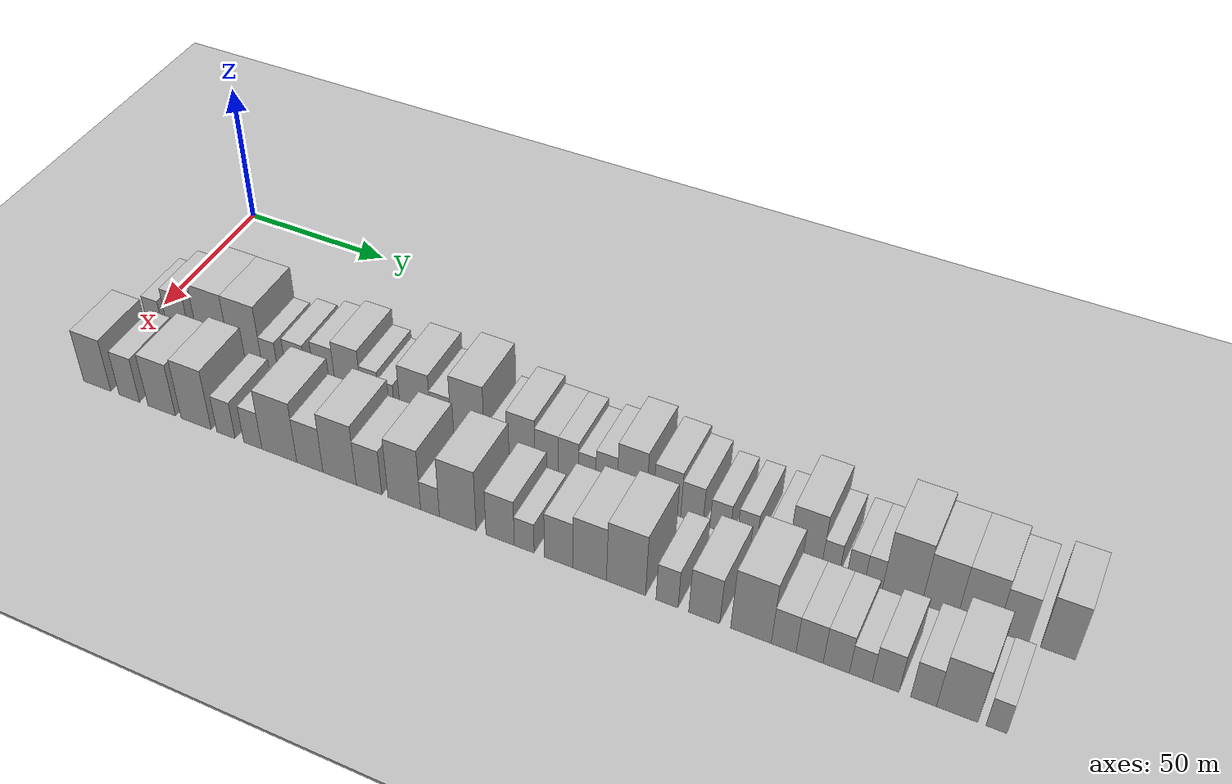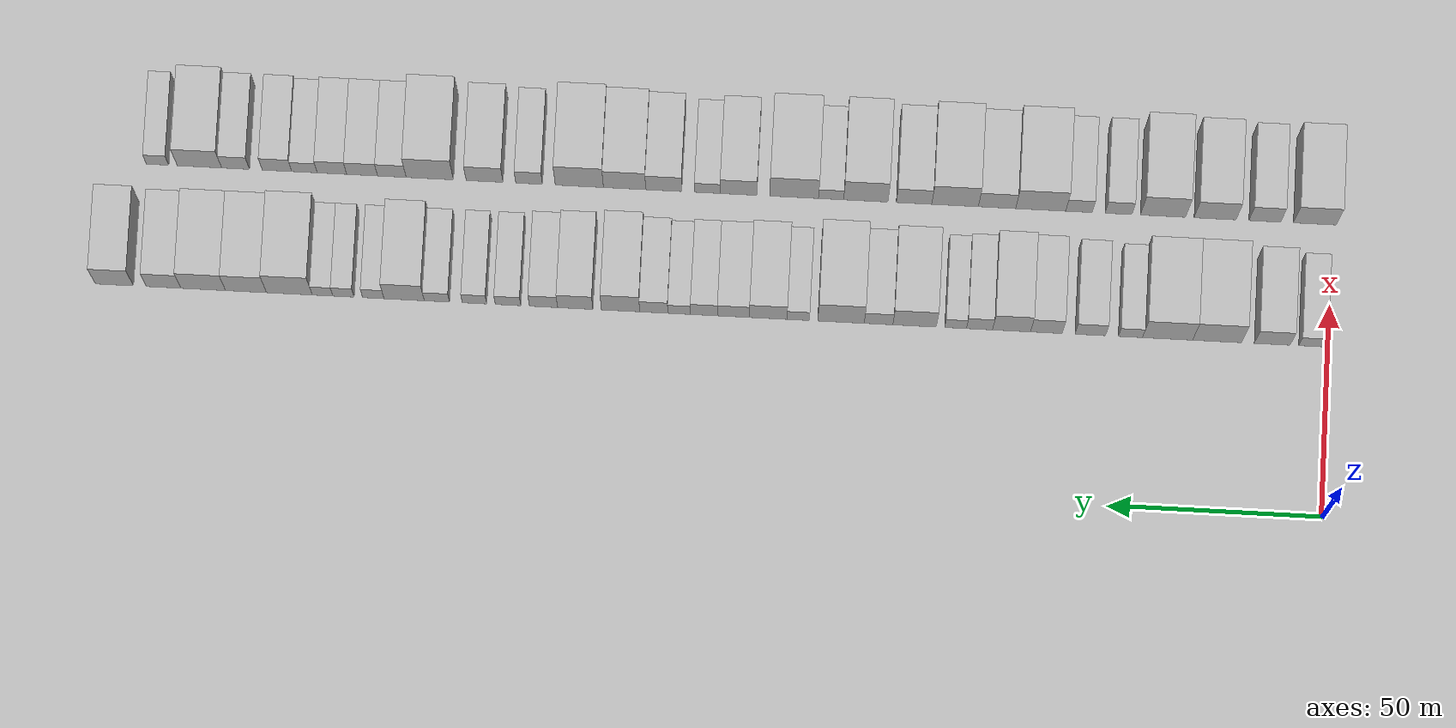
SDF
<sdf version="1.6">
 <world name="default">
  <include><name>ground_plane_1</name><uri>model://HANNAS_ground_plane</uri></include>
  <include>
   <name>ground_plane_2</name>
   <uri>model://HANNAS_ground_plane</uri>
   <pose>100 0 0  0 0 0</pose>
  </include>
  <model name="building_33">
   <static>1</static>
   <pose>50.0000 3.9265 0 0.000000 0.000000 0.000000</pose>
   <link name="link">
    <pose>0 0 6.00 0 0 0</pose>
    <collision name="collision"><geometry><box><size>20.0000 5.9898 12.0000</size></box></geometry></collision>
    <visual name="visual">
     <cast_shadows>0</cast_shadows>
     <geometry><box><size>20.0000 5.9898 12.0000</size></box></geometry>
     <material>
      <script>
       <uri>model://HANNAS_wall/materials/scripts</uri>
       <uri>model://HANNAS_wall/materials/textures</uri>
       <name>vrc/HANNAS_wall</name>
      </script>
     </material>
    </visual>
   </link>
  </model>
  <model name="building_34">
   <static>1</static>
   <pose>50.0000 13.1047 0 0.000000 0.000000 0.000000</pose>
   <link name="link">
    <pose>0 0 9.00 0 0 0</pose>
    <collision name="collision"><geometry><box><size>20.0000 8.3667 18.0000</size></box></geometry></collision>
    <visual name="visual">
     <cast_shadows>0</cast_shadows>
     <geometry><box><size>20.0000 8.3667 18.0000</size></box></geometry>
     <material>
      <script>
       <uri>model://HANNAS_wall/materials/scripts</uri>
       <uri>model://HANNAS_wall/materials/textures</uri>
       <name>vrc/HANNAS_wall</name>
      </script>
     </material>
    </visual>
   </link>
  </model>
  <model name="building_35">
   <static>1</static>
   <pose>50.0000 25.9832 0 0.000000 0.000000 0.000000</pose>
   <link name="link">
    <pose>0 0 12.00 0 0 0</pose>
    <collision name="collision"><geometry><box><size>20.0000 11.3902 24.0000</size></box></geometry></collision>
    <visual name="visual">
     <cast_shadows>0</cast_shadows>
     <geometry><box><size>20.0000 11.3902 24.0000</size></box></geometry>
     <material>
      <script>
       <uri>model://HANNAS_wall/materials/scripts</uri>
       <uri>model://HANNAS_wall/materials/textures</uri>
       <name>vrc/HANNAS_wall</name>
      </script>
     </material>
    </visual>
   </link>
  </model>
  <model name="building_36">
   <static>1</static>
   <pose>50.0000 37.5372 0 0.000000 0.000000 0.000000</pose>
   <link name="link">
    <pose>0 0 12.00 0 0 0</pose>
    <collision name="collision"><geometry><box><size>20.0000 11.7177 24.0000</size></box></geometry></collision>
    <visual name="visual">
     <cast_shadows>0</cast_shadows>
     <geometry><box><size>20.0000 11.7177 24.0000</size></box></geometry>
     <material>
      <script>
       <uri>model://HANNAS_wall/materials/scripts</uri>
       <uri>model://HANNAS_wall/materials/textures</uri>
       <name>vrc/HANNAS_wall</name>
      </script>
     </material>
    </visual>
   </link>
  </model>
  <model name="building_37">
   <static>1</static>
   <pose>50.0000 46.2099 0 0.000000 0.000000 0.000000</pose>
   <link name="link">
    <pose>0 0 6.00 0 0 0</pose>
    <collision name="collision"><geometry><box><size>20.0000 5.6278 12.0000</size></box></geometry></collision>
    <visual name="visual">
     <cast_shadows>0</cast_shadows>
     <geometry><box><size>20.0000 5.6278 12.0000</size></box></geometry>
     <material>
      <script>
       <uri>model://HANNAS_wall/materials/scripts</uri>
       <uri>model://HANNAS_wall/materials/textures</uri>
       <name>vrc/HANNAS_wall</name>
      </script>
     </material>
    </visual>
   </link>
  </model>
  <model name="building_38">
   <static>1</static>
   <pose>50.0000 55.5786 0 0.000000 0.000000 0.000000</pose>
   <link name="link">
    <pose>0 0 7.50 0 0 0</pose>
    <collision name="collision"><geometry><box><size>20.0000 7.1096 15.0000</size></box></geometry></collision>
    <visual name="visual">
     <cast_shadows>0</cast_shadows>
     <geometry><box><size>20.0000 7.1096 15.0000</size></box></geometry>
     <material>
      <script>
       <uri>model://HANNAS_wall/materials/scripts</uri>
       <uri>model://HANNAS_wall/materials/textures</uri>
       <name>vrc/HANNAS_wall</name>
      </script>
     </material>
    </visual>
   </link>
  </model>
  <model name="building_39">
   <static>1</static>
   <pose>50.0000 65.8306 0 0.000000 0.000000 0.000000</pose>
   <link name="link">
    <pose>0 0 9.00 0 0 0</pose>
    <collision name="collision"><geometry><box><size>20.0000 7.3943 18.0000</size></box></geometry></collision>
    <visual name="visual">
     <cast_shadows>0</cast_shadows>
     <geometry><box><size>20.0000 7.3943 18.0000</size></box></geometry>
     <material>
      <script>
       <uri>model://HANNAS_wall/materials/scripts</uri>
       <uri>model://HANNAS_wall/materials/textures</uri>
       <name>vrc/HANNAS_wall</name>
      </script>
     </material>
    </visual>
   </link>
  </model>
  <model name="building_40">
   <static>1</static>
   <pose>50.0000 73.9746 0 0.000000 0.000000 0.000000</pose>
   <link name="link">
    <pose>0 0 10.50 0 0 0</pose>
    <collision name="collision"><geometry><box><size>20.0000 8.8938 21.0000</size></box></geometry></collision>
    <visual name="visual">
     <cast_shadows>0</cast_shadows>
     <geometry><box><size>20.0000 8.8938 21.0000</size></box></geometry>
     <material>
      <script>
       <uri>model://HANNAS_wall/materials/scripts</uri>
       <uri>model://HANNAS_wall/materials/textures</uri>
       <name>vrc/HANNAS_wall</name>
      </script>
     </material>
    </visual>
   </link>
  </model>
  <model name="building_41">
   <static>1</static>
   <pose>50.0000 81.4546 0 0.000000 0.000000 0.000000</pose>
   <link name="link">
    <pose>0 0 7.50 0 0 0</pose>
    <collision name="collision"><geometry><box><size>20.0000 6.0662 15.0000</size></box></geometry></collision>
    <visual name="visual">
     <cast_shadows>0</cast_shadows>
     <geometry><box><size>20.0000 6.0662 15.0000</size></box></geometry>
     <material>
      <script>
       <uri>model://HANNAS_wall/materials/scripts</uri>
       <uri>model://HANNAS_wall/materials/textures</uri>
       <name>vrc/HANNAS_wall</name>
      </script>
     </material>
    </visual>
   </link>
  </model>
  <model name="building_42">
   <static>1</static>
   <pose>50.0000 87.0253 0 0.000000 0.000000 0.000000</pose>
   <link name="link">
    <pose>0 0 6.00 0 0 0</pose>
    <collision name="collision"><geometry><box><size>20.0000 5.0752 12.0000</size></box></geometry></collision>
    <visual name="visual">
     <cast_shadows>0</cast_shadows>
     <geometry><box><size>20.0000 5.0752 12.0000</size></box></geometry>
     <material>
      <script>
       <uri>model://HANNAS_wall/materials/scripts</uri>
       <uri>model://HANNAS_wall/materials/textures</uri>
       <name>vrc/HANNAS_wall</name>
      </script>
     </material>
    </visual>
   </link>
  </model>
  <model name="building_43">
   <static>1</static>
   <pose>50.0000 96.6323 0 0.000000 0.000000 0.000000</pose>
   <link name="link">
    <pose>0 0 10.50 0 0 0</pose>
    <collision name="collision"><geometry><box><size>20.0000 10.1386 21.0000</size></box></geometry></collision>
    <visual name="visual">
     <cast_shadows>0</cast_shadows>
     <geometry><box><size>20.0000 10.1386 21.0000</size></box></geometry>
     <material>
      <script>
       <uri>model://HANNAS_wall/materials/scripts</uri>
       <uri>model://HANNAS_wall/materials/textures</uri>
       <name>vrc/HANNAS_wall</name>
      </script>
     </material>
    </visual>
   </link>
  </model>
  <model name="building_44">
   <static>1</static>
   <pose>50.0000 105.0528 0 0.000000 0.000000 0.000000</pose>
   <link name="link">
    <pose>0 0 7.50 0 0 0</pose>
    <collision name="collision"><geometry><box><size>20.0000 6.7025 15.0000</size></box></geometry></collision>
    <visual name="visual">
     <cast_shadows>0</cast_shadows>
     <geometry><box><size>20.0000 6.7025 15.0000</size></box></geometry>
     <material>
      <script>
       <uri>model://HANNAS_wall/materials/scripts</uri>
       <uri>model://HANNAS_wall/materials/textures</uri>
       <name>vrc/HANNAS_wall</name>
      </script>
     </material>
    </visual>
   </link>
  </model>
  <model name="building_45">
   <static>1</static>
   <pose>50.0000 113.8188 0 0.000000 0.000000 0.000000</pose>
   <link name="link">
    <pose>0 0 12.00 0 0 0</pose>
    <collision name="collision"><geometry><box><size>20.0000 10.8294 24.0000</size></box></geometry></collision>
    <visual name="visual">
     <cast_shadows>0</cast_shadows>
     <geometry><box><size>20.0000 10.8294 24.0000</size></box></geometry>
     <material>
      <script>
       <uri>model://HANNAS_wall/materials/scripts</uri>
       <uri>model://HANNAS_wall/materials/textures</uri>
       <name>vrc/HANNAS_wall</name>
      </script>
     </material>
    </visual>
   </link>
  </model>
  <model name="building_46">
   <static>1</static>
   <pose>50.0000 123.8495 0 0.000000 0.000000 0.000000</pose>
   <link name="link">
    <pose>0 0 6.00 0 0 0</pose>
    <collision name="collision"><geometry><box><size>20.0000 5.2320 12.0000</size></box></geometry></collision>
    <visual name="visual">
     <cast_shadows>0</cast_shadows>
     <geometry><box><size>20.0000 5.2320 12.0000</size></box></geometry>
     <material>
      <script>
       <uri>model://HANNAS_wall/materials/scripts</uri>
       <uri>model://HANNAS_wall/materials/textures</uri>
       <name>vrc/HANNAS_wall</name>
      </script>
     </material>
    </visual>
   </link>
  </model>
  <model name="building_47">
   <static>1</static>
   <pose>50.0000 130.8574 0 0.000000 0.000000 0.000000</pose>
   <link name="link">
    <pose>0 0 9.00 0 0 0</pose>
    <collision name="collision"><geometry><box><size>20.0000 8.7837 18.0000</size></box></geometry></collision>
    <visual name="visual">
     <cast_shadows>0</cast_shadows>
     <geometry><box><size>20.0000 8.7837 18.0000</size></box></geometry>
     <material>
      <script>
       <uri>model://HANNAS_wall/materials/scripts</uri>
       <uri>model://HANNAS_wall/materials/textures</uri>
       <name>vrc/HANNAS_wall</name>
      </script>
     </material>
    </visual>
   </link>
  </model>
  <model name="building_48">
   <static>1</static>
   <pose>50.0000 138.9874 0 0.000000 0.000000 0.000000</pose>
   <link name="link">
    <pose>0 0 7.50 0 0 0</pose>
    <collision name="collision"><geometry><box><size>20.0000 7.4764 15.0000</size></box></geometry></collision>
    <visual name="visual">
     <cast_shadows>0</cast_shadows>
     <geometry><box><size>20.0000 7.4764 15.0000</size></box></geometry>
     <material>
      <script>
       <uri>model://HANNAS_wall/materials/scripts</uri>
       <uri>model://HANNAS_wall/materials/textures</uri>
       <name>vrc/HANNAS_wall</name>
      </script>
     </material>
    </visual>
   </link>
  </model>
  <model name="building_49">
   <static>1</static>
   <pose>50.0000 145.8648 0 0.000000 0.000000 0.000000</pose>
   <link name="link">
    <pose>0 0 7.50 0 0 0</pose>
    <collision name="collision"><geometry><box><size>20.0000 6.2784 15.0000</size></box></geometry></collision>
    <visual name="visual">
     <cast_shadows>0</cast_shadows>
     <geometry><box><size>20.0000 6.2784 15.0000</size></box></geometry>
     <material>
      <script>
       <uri>model://HANNAS_wall/materials/scripts</uri>
       <uri>model://HANNAS_wall/materials/textures</uri>
       <name>vrc/HANNAS_wall</name>
      </script>
     </material>
    </visual>
   </link>
  </model>
  <model name="building_50">
   <static>1</static>
   <pose>50.0000 151.6517 0 0.000000 0.000000 0.000000</pose>
   <link name="link">
    <pose>0 0 6.00 0 0 0</pose>
    <collision name="collision"><geometry><box><size>20.0000 5.2955 12.0000</size></box></geometry></collision>
    <visual name="visual">
     <cast_shadows>0</cast_shadows>
     <geometry><box><size>20.0000 5.2955 12.0000</size></box></geometry>
     <material>
      <script>
       <uri>model://HANNAS_wall/materials/scripts</uri>
       <uri>model://HANNAS_wall/materials/textures</uri>
       <name>vrc/HANNAS_wall</name>
      </script>
     </material>
    </visual>
   </link>
  </model>
  <model name="building_51">
   <static>1</static>
   <pose>50.0000 157.5836 0 0.000000 0.000000 0.000000</pose>
   <link name="link">
    <pose>0 0 7.50 0 0 0</pose>
    <collision name="collision"><geometry><box><size>20.0000 6.5682 15.0000</size></box></geometry></collision>
    <visual name="visual">
     <cast_shadows>0</cast_shadows>
     <geometry><box><size>20.0000 6.5682 15.0000</size></box></geometry>
     <material>
      <script>
       <uri>model://HANNAS_wall/materials/scripts</uri>
       <uri>model://HANNAS_wall/materials/textures</uri>
       <name>vrc/HANNAS_wall</name>
      </script>
     </material>
    </visual>
   </link>
  </model>
  <model name="building_52">
   <static>1</static>
   <pose>50.0000 165.3374 0 0.000000 0.000000 0.000000</pose>
   <link name="link">
    <pose>0 0 10.50 0 0 0</pose>
    <collision name="collision"><geometry><box><size>20.0000 8.9393 21.0000</size></box></geometry></collision>
    <visual name="visual">
     <cast_shadows>0</cast_shadows>
     <geometry><box><size>20.0000 8.9393 21.0000</size></box></geometry>
     <material>
      <script>
       <uri>model://HANNAS_wall/materials/scripts</uri>
       <uri>model://HANNAS_wall/materials/textures</uri>
       <name>vrc/HANNAS_wall</name>
      </script>
     </material>
    </visual>
   </link>
  </model>
  <model name="building_53">
   <static>1</static>
   <pose>50.0000 175.9258 0 0.000000 0.000000 0.000000</pose>
   <link name="link">
    <pose>0 0 9.00 0 0 0</pose>
    <collision name="collision"><geometry><box><size>20.0000 8.2376 18.0000</size></box></geometry></collision>
    <visual name="visual">
     <cast_shadows>0</cast_shadows>
     <geometry><box><size>20.0000 8.2376 18.0000</size></box></geometry>
     <material>
      <script>
       <uri>model://HANNAS_wall/materials/scripts</uri>
       <uri>model://HANNAS_wall/materials/textures</uri>
       <name>vrc/HANNAS_wall</name>
      </script>
     </material>
    </visual>
   </link>
  </model>
  <model name="building_54">
   <static>1</static>
   <pose>50.0000 183.3420 0 0.000000 0.000000 0.000000</pose>
   <link name="link">
    <pose>0 0 7.50 0 0 0</pose>
    <collision name="collision"><geometry><box><size>20.0000 6.5947 15.0000</size></box></geometry></collision>
    <visual name="visual">
     <cast_shadows>0</cast_shadows>
     <geometry><box><size>20.0000 6.5947 15.0000</size></box></geometry>
     <material>
      <script>
       <uri>model://HANNAS_wall/materials/scripts</uri>
       <uri>model://HANNAS_wall/materials/textures</uri>
       <name>vrc/HANNAS_wall</name>
      </script>
     </material>
    </visual>
   </link>
  </model>
  <model name="building_55">
   <static>1</static>
   <pose>50.0000 191.6274 0 0.000000 0.000000 0.000000</pose>
   <link name="link">
    <pose>0 0 6.00 0 0 0</pose>
    <collision name="collision"><geometry><box><size>20.0000 5.9762 12.0000</size></box></geometry></collision>
    <visual name="visual">
     <cast_shadows>0</cast_shadows>
     <geometry><box><size>20.0000 5.9762 12.0000</size></box></geometry>
     <material>
      <script>
       <uri>model://HANNAS_wall/materials/scripts</uri>
       <uri>model://HANNAS_wall/materials/textures</uri>
       <name>vrc/HANNAS_wall</name>
      </script>
     </material>
    </visual>
   </link>
  </model>
  <model name="building_56">
   <static>1</static>
   <pose>50.0000 199.4643 0 0.000000 0.000000 0.000000</pose>
   <link name="link">
    <pose>0 0 6.00 0 0 0</pose>
    <collision name="collision"><geometry><box><size>20.0000 5.6976 12.0000</size></box></geometry></collision>
    <visual name="visual">
     <cast_shadows>0</cast_shadows>
     <geometry><box><size>20.0000 5.6976 12.0000</size></box></geometry>
     <material>
      <script>
       <uri>model://HANNAS_wall/materials/scripts</uri>
       <uri>model://HANNAS_wall/materials/textures</uri>
       <name>vrc/HANNAS_wall</name>
      </script>
     </material>
    </visual>
   </link>
  </model>
  <model name="building_57">
   <static>1</static>
   <pose>50.0000 208.2689 0 0.000000 0.000000 0.000000</pose>
   <link name="link">
    <pose>0 0 6.00 0 0 0</pose>
    <collision name="collision"><geometry><box><size>20.0000 5.9114 12.0000</size></box></geometry></collision>
    <visual name="visual">
     <cast_shadows>0</cast_shadows>
     <geometry><box><size>20.0000 5.9114 12.0000</size></box></geometry>
     <material>
      <script>
       <uri>model://HANNAS_wall/materials/scripts</uri>
       <uri>model://HANNAS_wall/materials/textures</uri>
       <name>vrc/HANNAS_wall</name>
      </script>
     </material>
    </visual>
   </link>
  </model>
  <model name="building_58">
   <static>1</static>
   <pose>50.0000 215.9318 0 0.000000 0.000000 0.000000</pose>
   <link name="link">
    <pose>0 0 10.50 0 0 0</pose>
    <collision name="collision"><geometry><box><size>20.0000 9.4145 21.0000</size></box></geometry></collision>
    <visual name="visual">
     <cast_shadows>0</cast_shadows>
     <geometry><box><size>20.0000 9.4145 21.0000</size></box></geometry>
     <material>
      <script>
       <uri>model://HANNAS_wall/materials/scripts</uri>
       <uri>model://HANNAS_wall/materials/textures</uri>
       <name>vrc/HANNAS_wall</name>
      </script>
     </material>
    </visual>
   </link>
  </model>
  <model name="building_59">
   <static>1</static>
   <pose>50.0000 223.1392 0 0.000000 0.000000 0.000000</pose>
   <link name="link">
    <pose>0 0 6.00 0 0 0</pose>
    <collision name="collision"><geometry><box><size>20.0000 5.0002 12.0000</size></box></geometry></collision>
    <visual name="visual">
     <cast_shadows>0</cast_shadows>
     <geometry><box><size>20.0000 5.0002 12.0000</size></box></geometry>
     <material>
      <script>
       <uri>model://HANNAS_wall/materials/scripts</uri>
       <uri>model://HANNAS_wall/materials/textures</uri>
       <name>vrc/HANNAS_wall</name>
      </script>
     </material>
    </visual>
   </link>
  </model>
  <model name="building_60">
   <static>1</static>
   <pose>50.0000 230.1248 0 0.000000 0.000000 0.000000</pose>
   <link name="link">
    <pose>0 0 6.00 0 0 0</pose>
    <collision name="collision"><geometry><box><size>20.0000 4.9710 12.0000</size></box></geometry></collision>
    <visual name="visual">
     <cast_shadows>0</cast_shadows>
     <geometry><box><size>20.0000 4.9710 12.0000</size></box></geometry>
     <material>
      <script>
       <uri>model://HANNAS_wall/materials/scripts</uri>
       <uri>model://HANNAS_wall/materials/textures</uri>
       <name>vrc/HANNAS_wall</name>
      </script>
     </material>
    </visual>
   </link>
  </model>
  <model name="building_61">
   <static>1</static>
   <pose>50.0000 235.0195 0 0.000000 0.000000 0.000000</pose>
   <link name="link">
    <pose>0 0 6.00 0 0 0</pose>
    <collision name="collision"><geometry><box><size>20.0000 4.8184 12.0000</size></box></geometry></collision>
    <visual name="visual">
     <cast_shadows>0</cast_shadows>
     <geometry><box><size>20.0000 4.8184 12.0000</size></box></geometry>
     <material>
      <script>
       <uri>model://HANNAS_wall/materials/scripts</uri>
       <uri>model://HANNAS_wall/materials/textures</uri>
       <name>vrc/HANNAS_wall</name>
      </script>
     </material>
    </visual>
   </link>
  </model>
  <model name="building_62">
   <static>1</static>
   <pose>50.0000 242.7925 0 0.000000 0.000000 0.000000</pose>
   <link name="link">
    <pose>0 0 12.00 0 0 0</pose>
    <collision name="collision"><geometry><box><size>20.0000 10.7274 24.0000</size></box></geometry></collision>
    <visual name="visual">
     <cast_shadows>0</cast_shadows>
     <geometry><box><size>20.0000 10.7274 24.0000</size></box></geometry>
     <material>
      <script>
       <uri>model://HANNAS_wall/materials/scripts</uri>
       <uri>model://HANNAS_wall/materials/textures</uri>
       <name>vrc/HANNAS_wall</name>
      </script>
     </material>
    </visual>
   </link>
  </model>
  <model name="building_63">
   <static>1</static>
   <pose>50.0000 252.9426 0 0.000000 0.000000 0.000000</pose>
   <link name="link">
    <pose>0 0 10.50 0 0 0</pose>
    <collision name="collision"><geometry><box><size>20.0000 9.5728 21.0000</size></box></geometry></collision>
    <visual name="visual">
     <cast_shadows>0</cast_shadows>
     <geometry><box><size>20.0000 9.5728 21.0000</size></box></geometry>
     <material>
      <script>
       <uri>model://HANNAS_wall/materials/scripts</uri>
       <uri>model://HANNAS_wall/materials/textures</uri>
       <name>vrc/HANNAS_wall</name>
      </script>
     </material>
    </visual>
   </link>
  </model>
  <model name="building_64">
   <static>1</static>
   <pose>50.0000 262.9545 0 0.000000 0.000000 0.000000</pose>
   <link name="link">
    <pose>0 0 10.50 0 0 0</pose>
    <collision name="collision"><geometry><box><size>20.0000 10.4511 21.0000</size></box></geometry></collision>
    <visual name="visual">
     <cast_shadows>0</cast_shadows>
     <geometry><box><size>20.0000 10.4511 21.0000</size></box></geometry>
     <material>
      <script>
       <uri>model://HANNAS_wall/materials/scripts</uri>
       <uri>model://HANNAS_wall/materials/textures</uri>
       <name>vrc/HANNAS_wall</name>
      </script>
     </material>
    </visual>
   </link>
  </model>
  <model name="building_65">
   <static>1</static>
   <pose>50.0000 272.2290 0 0.000000 0.000000 0.000000</pose>
   <link name="link">
    <pose>0 0 9.00 0 0 0</pose>
    <collision name="collision"><geometry><box><size>20.0000 8.0979 18.0000</size></box></geometry></collision>
    <visual name="visual">
     <cast_shadows>0</cast_shadows>
     <geometry><box><size>20.0000 8.0979 18.0000</size></box></geometry>
     <material>
      <script>
       <uri>model://HANNAS_wall/materials/scripts</uri>
       <uri>model://HANNAS_wall/materials/textures</uri>
       <name>vrc/HANNAS_wall</name>
      </script>
     </material>
    </visual>
   </link>
  </model>
  <model name="building_66">
   <static>1</static>
   <pose>50.0000 283.7309 0 0.000000 0.000000 0.000000</pose>
   <link name="link">
    <pose>0 0 10.50 0 0 0</pose>
    <collision name="collision"><geometry><box><size>20.0000 8.9060 21.0000</size></box></geometry></collision>
    <visual name="visual">
     <cast_shadows>0</cast_shadows>
     <geometry><box><size>20.0000 8.9060 21.0000</size></box></geometry>
     <material>
      <script>
       <uri>model://HANNAS_wall/materials/scripts</uri>
       <uri>model://HANNAS_wall/materials/textures</uri>
       <name>vrc/HANNAS_wall</name>
      </script>
     </material>
    </visual>
   </link>
  </model>
  <model name="building_99">
   <static>1</static>
   <pose>79.0000 4.2312 0 0.000000 0.000000 0.000000</pose>
   <link name="link">
    <pose>0 0 10.50 0 0 0</pose>
    <collision name="collision"><geometry><box><size>20.0000 10.0009 21.0000</size></box></geometry></collision>
    <visual name="visual">
     <cast_shadows>0</cast_shadows>
     <geometry><box><size>20.0000 10.0009 21.0000</size></box></geometry>
     <material>
      <script>
       <uri>model://HANNAS_wall/materials/scripts</uri>
       <uri>model://HANNAS_wall/materials/textures</uri>
       <name>vrc/HANNAS_wall</name>
      </script>
     </material>
    </visual>
   </link>
  </model>
  <model name="building_100">
   <static>1</static>
   <pose>79.0000 15.9465 0 0.000000 0.000000 0.000000</pose>
   <link name="link">
    <pose>0 0 9.00 0 0 0</pose>
    <collision name="collision"><geometry><box><size>20.0000 7.4298 18.0000</size></box></geometry></collision>
    <visual name="visual">
     <cast_shadows>0</cast_shadows>
     <geometry><box><size>20.0000 7.4298 18.0000</size></box></geometry>
     <material>
      <script>
       <uri>model://HANNAS_wall/materials/scripts</uri>
       <uri>model://HANNAS_wall/materials/textures</uri>
       <name>vrc/HANNAS_wall</name>
      </script>
     </material>
    </visual>
   </link>
  </model>
  <model name="building_101">
   <static>1</static>
   <pose>79.0000 27.5793 0 0.000000 0.000000 0.000000</pose>
   <link name="link">
    <pose>0 0 10.50 0 0 0</pose>
    <collision name="collision"><geometry><box><size>20.0000 9.8357 21.0000</size></box></geometry></collision>
    <visual name="visual">
     <cast_shadows>0</cast_shadows>
     <geometry><box><size>20.0000 9.8357 21.0000</size></box></geometry>
     <material>
      <script>
       <uri>model://HANNAS_wall/materials/scripts</uri>
       <uri>model://HANNAS_wall/materials/textures</uri>
       <name>vrc/HANNAS_wall</name>
      </script>
     </material>
    </visual>
   </link>
  </model>
  <model name="building_102">
   <static>1</static>
   <pose>79.0000 39.7813 0 0.000000 0.000000 0.000000</pose>
   <link name="link">
    <pose>0 0 12.00 0 0 0</pose>
    <collision name="collision"><geometry><box><size>20.0000 10.5683 24.0000</size></box></geometry></collision>
    <visual name="visual">
     <cast_shadows>0</cast_shadows>
     <geometry><box><size>20.0000 10.5683 24.0000</size></box></geometry>
     <material>
      <script>
       <uri>model://HANNAS_wall/materials/scripts</uri>
       <uri>model://HANNAS_wall/materials/textures</uri>
       <name>vrc/HANNAS_wall</name>
      </script>
     </material>
    </visual>
   </link>
  </model>
  <model name="building_103">
   <static>1</static>
   <pose>79.0000 50.2114 0 0.000000 0.000000 0.000000</pose>
   <link name="link">
    <pose>0 0 7.50 0 0 0</pose>
    <collision name="collision"><geometry><box><size>20.0000 6.2919 15.0000</size></box></geometry></collision>
    <visual name="visual">
     <cast_shadows>0</cast_shadows>
     <geometry><box><size>20.0000 6.2919 15.0000</size></box></geometry>
     <material>
      <script>
       <uri>model://HANNAS_wall/materials/scripts</uri>
       <uri>model://HANNAS_wall/materials/textures</uri>
       <name>vrc/HANNAS_wall</name>
      </script>
     </material>
    </visual>
   </link>
  </model>
  <model name="building_104">
   <static>1</static>
   <pose>79.0000 59.4623 0 0.000000 0.000000 0.000000</pose>
   <link name="link">
    <pose>0 0 7.50 0 0 0</pose>
    <collision name="collision"><geometry><box><size>20.0000 6.2099 15.0000</size></box></geometry></collision>
    <visual name="visual">
     <cast_shadows>0</cast_shadows>
     <geometry><box><size>20.0000 6.2099 15.0000</size></box></geometry>
     <material>
      <script>
       <uri>model://HANNAS_wall/materials/scripts</uri>
       <uri>model://HANNAS_wall/materials/textures</uri>
       <name>vrc/HANNAS_wall</name>
      </script>
     </material>
    </visual>
   </link>
  </model>
  <model name="building_105">
   <static>1</static>
   <pose>79.0000 68.4412 0 0.000000 0.000000 0.000000</pose>
   <link name="link">
    <pose>0 0 12.00 0 0 0</pose>
    <collision name="collision"><geometry><box><size>20.0000 11.7479 24.0000</size></box></geometry></collision>
    <visual name="visual">
     <cast_shadows>0</cast_shadows>
     <geometry><box><size>20.0000 11.7479 24.0000</size></box></geometry>
     <material>
      <script>
       <uri>model://HANNAS_wall/materials/scripts</uri>
       <uri>model://HANNAS_wall/materials/textures</uri>
       <name>vrc/HANNAS_wall</name>
      </script>
     </material>
    </visual>
   </link>
  </model>
  <model name="building_106">
   <static>1</static>
   <pose>79.0000 78.6854 0 0.000000 0.000000 0.000000</pose>
   <link name="link">
    <pose>0 0 9.00 0 0 0</pose>
    <collision name="collision"><geometry><box><size>20.0000 8.7406 18.0000</size></box></geometry></collision>
    <visual name="visual">
     <cast_shadows>0</cast_shadows>
     <geometry><box><size>20.0000 8.7406 18.0000</size></box></geometry>
     <material>
      <script>
       <uri>model://HANNAS_wall/materials/scripts</uri>
       <uri>model://HANNAS_wall/materials/textures</uri>
       <name>vrc/HANNAS_wall</name>
      </script>
     </material>
    </visual>
   </link>
  </model>
  <model name="building_107">
   <static>1</static>
   <pose>79.0000 88.5186 0 0.000000 0.000000 0.000000</pose>
   <link name="link">
    <pose>0 0 12.00 0 0 0</pose>
    <collision name="collision"><geometry><box><size>20.0000 10.9258 24.0000</size></box></geometry></collision>
    <visual name="visual">
     <cast_shadows>0</cast_shadows>
     <geometry><box><size>20.0000 10.9258 24.0000</size></box></geometry>
     <material>
      <script>
       <uri>model://HANNAS_wall/materials/scripts</uri>
       <uri>model://HANNAS_wall/materials/textures</uri>
       <name>vrc/HANNAS_wall</name>
      </script>
     </material>
    </visual>
   </link>
  </model>
  <model name="building_108">
   <static>1</static>
   <pose>79.0000 98.1202 0 0.000000 0.000000 0.000000</pose>
   <link name="link">
    <pose>0 0 9.00 0 0 0</pose>
    <collision name="collision"><geometry><box><size>20.0000 8.2773 18.0000</size></box></geometry></collision>
    <visual name="visual">
     <cast_shadows>0</cast_shadows>
     <geometry><box><size>20.0000 8.2773 18.0000</size></box></geometry>
     <material>
      <script>
       <uri>model://HANNAS_wall/materials/scripts</uri>
       <uri>model://HANNAS_wall/materials/textures</uri>
       <name>vrc/HANNAS_wall</name>
      </script>
     </material>
    </visual>
   </link>
  </model>
  <model name="building_109">
   <static>1</static>
   <pose>79.0000 109.4431 0 0.000000 0.000000 0.000000</pose>
   <link name="link">
    <pose>0 0 12.00 0 0 0</pose>
    <collision name="collision"><geometry><box><size>20.0000 10.3685 24.0000</size></box></geometry></collision>
    <visual name="visual">
     <cast_shadows>0</cast_shadows>
     <geometry><box><size>20.0000 10.3685 24.0000</size></box></geometry>
     <material>
      <script>
       <uri>model://HANNAS_wall/materials/scripts</uri>
       <uri>model://HANNAS_wall/materials/textures</uri>
       <name>vrc/HANNAS_wall</name>
      </script>
     </material>
    </visual>
   </link>
  </model>
  <model name="building_110">
   <static>1</static>
   <pose>79.0000 117.5801 0 0.000000 0.000000 0.000000</pose>
   <link name="link">
    <pose>0 0 6.00 0 0 0</pose>
    <collision name="collision"><geometry><box><size>20.0000 5.9054 12.0000</size></box></geometry></collision>
    <visual name="visual">
     <cast_shadows>0</cast_shadows>
     <geometry><box><size>20.0000 5.9054 12.0000</size></box></geometry>
     <material>
      <script>
       <uri>model://HANNAS_wall/materials/scripts</uri>
       <uri>model://HANNAS_wall/materials/textures</uri>
       <name>vrc/HANNAS_wall</name>
      </script>
     </material>
    </visual>
   </link>
  </model>
  <model name="building_111">
   <static>1</static>
   <pose>79.0000 126.2439 0 0.000000 0.000000 0.000000</pose>
   <link name="link">
    <pose>0 0 12.00 0 0 0</pose>
    <collision name="collision"><geometry><box><size>20.0000 11.4223 24.0000</size></box></geometry></collision>
    <visual name="visual">
     <cast_shadows>0</cast_shadows>
     <geometry><box><size>20.0000 11.4223 24.0000</size></box></geometry>
     <material>
      <script>
       <uri>model://HANNAS_wall/materials/scripts</uri>
       <uri>model://HANNAS_wall/materials/textures</uri>
       <name>vrc/HANNAS_wall</name>
      </script>
     </material>
    </visual>
   </link>
  </model>
  <model name="building_112">
   <static>1</static>
   <pose>79.0000 139.2700 0 0.000000 0.000000 0.000000</pose>
   <link name="link">
    <pose>0 0 9.00 0 0 0</pose>
    <collision name="collision"><geometry><box><size>20.0000 8.6298 18.0000</size></box></geometry></collision>
    <visual name="visual">
     <cast_shadows>0</cast_shadows>
     <geometry><box><size>20.0000 8.6298 18.0000</size></box></geometry>
     <material>
      <script>
       <uri>model://HANNAS_wall/materials/scripts</uri>
       <uri>model://HANNAS_wall/materials/textures</uri>
       <name>vrc/HANNAS_wall</name>
      </script>
     </material>
    </visual>
   </link>
  </model>
  <model name="building_113">
   <static>1</static>
   <pose>79.0000 146.5834 0 0.000000 0.000000 0.000000</pose>
   <link name="link">
    <pose>0 0 6.00 0 0 0</pose>
    <collision name="collision"><geometry><box><size>20.0000 5.9970 12.0000</size></box></geometry></collision>
    <visual name="visual">
     <cast_shadows>0</cast_shadows>
     <geometry><box><size>20.0000 5.9970 12.0000</size></box></geometry>
     <material>
      <script>
       <uri>model://HANNAS_wall/materials/scripts</uri>
       <uri>model://HANNAS_wall/materials/textures</uri>
       <name>vrc/HANNAS_wall</name>
      </script>
     </material>
    </visual>
   </link>
  </model>
  <model name="building_114">
   <static>1</static>
   <pose>79.0000 156.8064 0 0.000000 0.000000 0.000000</pose>
   <link name="link">
    <pose>0 0 9.00 0 0 0</pose>
    <collision name="collision"><geometry><box><size>20.0000 8.4489 18.0000</size></box></geometry></collision>
    <visual name="visual">
     <cast_shadows>0</cast_shadows>
     <geometry><box><size>20.0000 8.4489 18.0000</size></box></geometry>
     <material>
      <script>
       <uri>model://HANNAS_wall/materials/scripts</uri>
       <uri>model://HANNAS_wall/materials/textures</uri>
       <name>vrc/HANNAS_wall</name>
      </script>
     </material>
    </visual>
   </link>
  </model>
  <model name="building_115">
   <static>1</static>
   <pose>79.0000 165.9875 0 0.000000 0.000000 0.000000</pose>
   <link name="link">
    <pose>0 0 10.50 0 0 0</pose>
    <collision name="collision"><geometry><box><size>20.0000 9.9133 21.0000</size></box></geometry></collision>
    <visual name="visual">
     <cast_shadows>0</cast_shadows>
     <geometry><box><size>20.0000 9.9133 21.0000</size></box></geometry>
     <material>
      <script>
       <uri>model://HANNAS_wall/materials/scripts</uri>
       <uri>model://HANNAS_wall/materials/textures</uri>
       <name>vrc/HANNAS_wall</name>
      </script>
     </material>
    </visual>
   </link>
  </model>
  <model name="building_116">
   <static>1</static>
   <pose>79.0000 176.5829 0 0.000000 0.000000 0.000000</pose>
   <link name="link">
    <pose>0 0 12.00 0 0 0</pose>
    <collision name="collision"><geometry><box><size>20.0000 11.2775 24.0000</size></box></geometry></collision>
    <visual name="visual">
     <cast_shadows>0</cast_shadows>
     <geometry><box><size>20.0000 11.2775 24.0000</size></box></geometry>
     <material>
      <script>
       <uri>model://HANNAS_wall/materials/scripts</uri>
       <uri>model://HANNAS_wall/materials/textures</uri>
       <name>vrc/HANNAS_wall</name>
      </script>
     </material>
    </visual>
   </link>
  </model>
  <model name="building_117">
   <static>1</static>
   <pose>79.0000 188.3450 0 0.000000 0.000000 0.000000</pose>
   <link name="link">
    <pose>0 0 7.50 0 0 0</pose>
    <collision name="collision"><geometry><box><size>20.0000 6.2466 15.0000</size></box></geometry></collision>
    <visual name="visual">
     <cast_shadows>0</cast_shadows>
     <geometry><box><size>20.0000 6.2466 15.0000</size></box></geometry>
     <material>
      <script>
       <uri>model://HANNAS_wall/materials/scripts</uri>
       <uri>model://HANNAS_wall/materials/textures</uri>
       <name>vrc/HANNAS_wall</name>
      </script>
     </material>
    </visual>
   </link>
  </model>
  <model name="building_118">
   <static>1</static>
   <pose>79.0000 198.7913 0 0.000000 0.000000 0.000000</pose>
   <link name="link">
    <pose>0 0 9.00 0 0 0</pose>
    <collision name="collision"><geometry><box><size>20.0000 8.6461 18.0000</size></box></geometry></collision>
    <visual name="visual">
     <cast_shadows>0</cast_shadows>
     <geometry><box><size>20.0000 8.6461 18.0000</size></box></geometry>
     <material>
      <script>
       <uri>model://HANNAS_wall/materials/scripts</uri>
       <uri>model://HANNAS_wall/materials/textures</uri>
       <name>vrc/HANNAS_wall</name>
      </script>
     </material>
    </visual>
   </link>
  </model>
  <model name="building_119">
   <static>1</static>
   <pose>79.0000 211.6630 0 0.000000 0.000000 0.000000</pose>
   <link name="link">
    <pose>0 0 12.00 0 0 0</pose>
    <collision name="collision"><geometry><box><size>20.0000 11.0973 24.0000</size></box></geometry></collision>
    <visual name="visual">
     <cast_shadows>0</cast_shadows>
     <geometry><box><size>20.0000 11.0973 24.0000</size></box></geometry>
     <material>
      <script>
       <uri>model://HANNAS_wall/materials/scripts</uri>
       <uri>model://HANNAS_wall/materials/textures</uri>
       <name>vrc/HANNAS_wall</name>
      </script>
     </material>
    </visual>
   </link>
  </model>
  <model name="building_120">
   <static>1</static>
   <pose>79.0000 220.5590 0 0.000000 0.000000 0.000000</pose>
   <link name="link">
    <pose>0 0 7.50 0 0 0</pose>
    <collision name="collision"><geometry><box><size>20.0000 6.6946 15.0000</size></box></geometry></collision>
    <visual name="visual">
     <cast_shadows>0</cast_shadows>
     <geometry><box><size>20.0000 6.6946 15.0000</size></box></geometry>
     <material>
      <script>
       <uri>model://HANNAS_wall/materials/scripts</uri>
       <uri>model://HANNAS_wall/materials/textures</uri>
       <name>vrc/HANNAS_wall</name>
      </script>
     </material>
    </visual>
   </link>
  </model>
  <model name="building_121">
   <static>1</static>
   <pose>79.0000 227.5294 0 0.000000 0.000000 0.000000</pose>
   <link name="link">
    <pose>0 0 7.50 0 0 0</pose>
    <collision name="collision"><geometry><box><size>20.0000 7.2462 15.0000</size></box></geometry></collision>
    <visual name="visual">
     <cast_shadows>0</cast_shadows>
     <geometry><box><size>20.0000 7.2462 15.0000</size></box></geometry>
     <material>
      <script>
       <uri>model://HANNAS_wall/materials/scripts</uri>
       <uri>model://HANNAS_wall/materials/textures</uri>
       <name>vrc/HANNAS_wall</name>
      </script>
     </material>
    </visual>
   </link>
  </model>
  <model name="building_122">
   <static>1</static>
   <pose>79.0000 234.6060 0 0.000000 0.000000 0.000000</pose>
   <link name="link">
    <pose>0 0 7.50 0 0 0</pose>
    <collision name="collision"><geometry><box><size>20.0000 6.9069 15.0000</size></box></geometry></collision>
    <visual name="visual">
     <cast_shadows>0</cast_shadows>
     <geometry><box><size>20.0000 6.9069 15.0000</size></box></geometry>
     <material>
      <script>
       <uri>model://HANNAS_wall/materials/scripts</uri>
       <uri>model://HANNAS_wall/materials/textures</uri>
       <name>vrc/HANNAS_wall</name>
      </script>
     </material>
    </visual>
   </link>
  </model>
  <model name="building_123">
   <static>1</static>
   <pose>79.0000 241.0512 0 0.000000 0.000000 0.000000</pose>
   <link name="link">
    <pose>0 0 6.00 0 0 0</pose>
    <collision name="collision"><geometry><box><size>20.0000 5.9835 12.0000</size></box></geometry></collision>
    <visual name="visual">
     <cast_shadows>0</cast_shadows>
     <geometry><box><size>20.0000 5.9835 12.0000</size></box></geometry>
     <material>
      <script>
       <uri>model://HANNAS_wall/materials/scripts</uri>
       <uri>model://HANNAS_wall/materials/textures</uri>
       <name>vrc/HANNAS_wall</name>
      </script>
     </material>
    </visual>
   </link>
  </model>
  <model name="building_124">
   <static>1</static>
   <pose>79.0000 247.5075 0 0.000000 0.000000 0.000000</pose>
   <link name="link">
    <pose>0 0 7.50 0 0 0</pose>
    <collision name="collision"><geometry><box><size>20.0000 6.9291 15.0000</size></box></geometry></collision>
    <visual name="visual">
     <cast_shadows>0</cast_shadows>
     <geometry><box><size>20.0000 6.9291 15.0000</size></box></geometry>
     <material>
      <script>
       <uri>model://HANNAS_wall/materials/scripts</uri>
       <uri>model://HANNAS_wall/materials/textures</uri>
       <name>vrc/HANNAS_wall</name>
      </script>
     </material>
    </visual>
   </link>
  </model>
  <model name="building_125">
   <static>1</static>
   <pose>79.0000 257.2397 0 0.000000 0.000000 0.000000</pose>
   <link name="link">
    <pose>0 0 7.50 0 0 0</pose>
    <collision name="collision"><geometry><box><size>20.0000 6.5353 15.0000</size></box></geometry></collision>
    <visual name="visual">
     <cast_shadows>0</cast_shadows>
     <geometry><box><size>20.0000 6.5353 15.0000</size></box></geometry>
     <material>
      <script>
       <uri>model://HANNAS_wall/materials/scripts</uri>
       <uri>model://HANNAS_wall/materials/textures</uri>
       <name>vrc/HANNAS_wall</name>
      </script>
     </material>
    </visual>
   </link>
  </model>
  <model name="building_126">
   <static>1</static>
   <pose>79.0000 265.7123 0 0.000000 0.000000 0.000000</pose>
   <link name="link">
    <pose>0 0 10.50 0 0 0</pose>
    <collision name="collision"><geometry><box><size>20.0000 10.4099 21.0000</size></box></geometry></collision>
    <visual name="visual">
     <cast_shadows>0</cast_shadows>
     <geometry><box><size>20.0000 10.4099 21.0000</size></box></geometry>
     <material>
      <script>
       <uri>model://HANNAS_wall/materials/scripts</uri>
       <uri>model://HANNAS_wall/materials/textures</uri>
       <name>vrc/HANNAS_wall</name>
      </script>
     </material>
    </visual>
   </link>
  </model>
  <model name="building_127">
   <static>1</static>
   <pose>79.0000 275.5315 0 0.000000 0.000000 0.000000</pose>
   <link name="link">
    <pose>0 0 6.00 0 0 0</pose>
    <collision name="collision"><geometry><box><size>20.0000 5.2285 12.0000</size></box></geometry></collision>
    <visual name="visual">
     <cast_shadows>0</cast_shadows>
     <geometry><box><size>20.0000 5.2285 12.0000</size></box></geometry>
     <material>
      <script>
       <uri>model://HANNAS_wall/materials/scripts</uri>
       <uri>model://HANNAS_wall/materials/textures</uri>
       <name>vrc/HANNAS_wall</name>
      </script>
     </material>
    </visual>
   </link>
  </model>
 </world>
</sdf>
